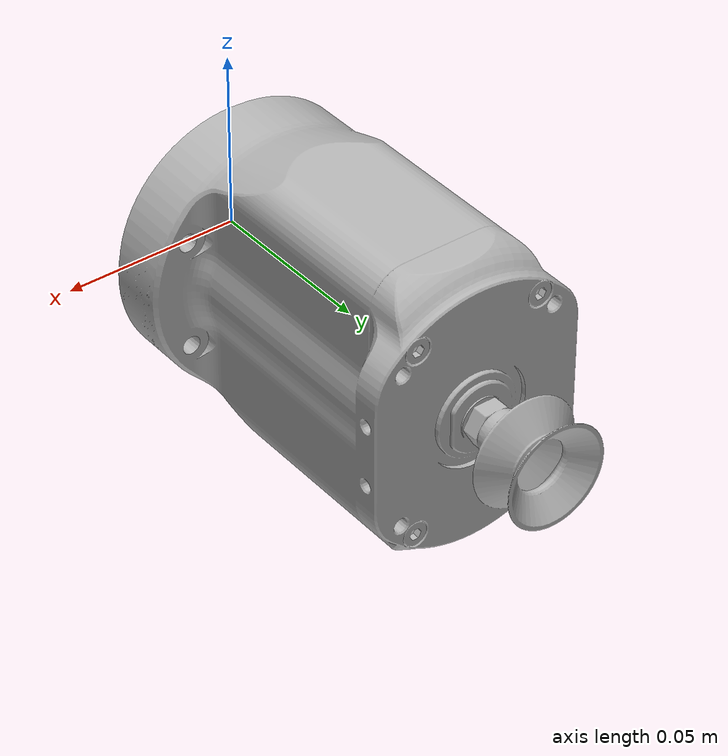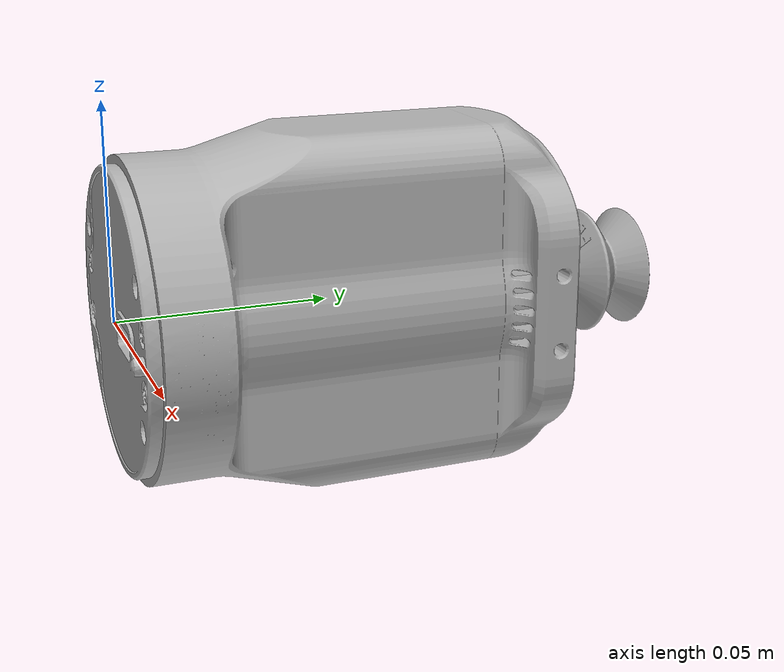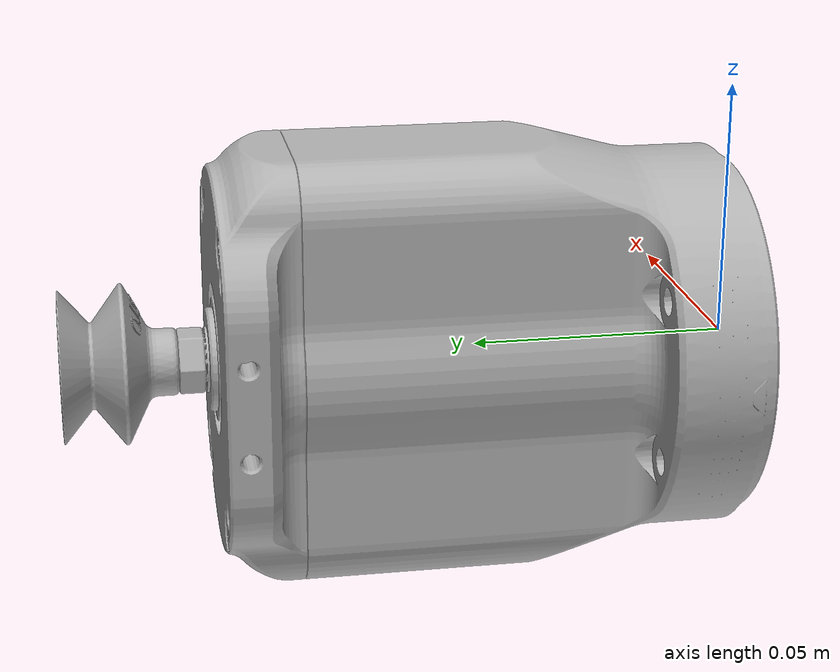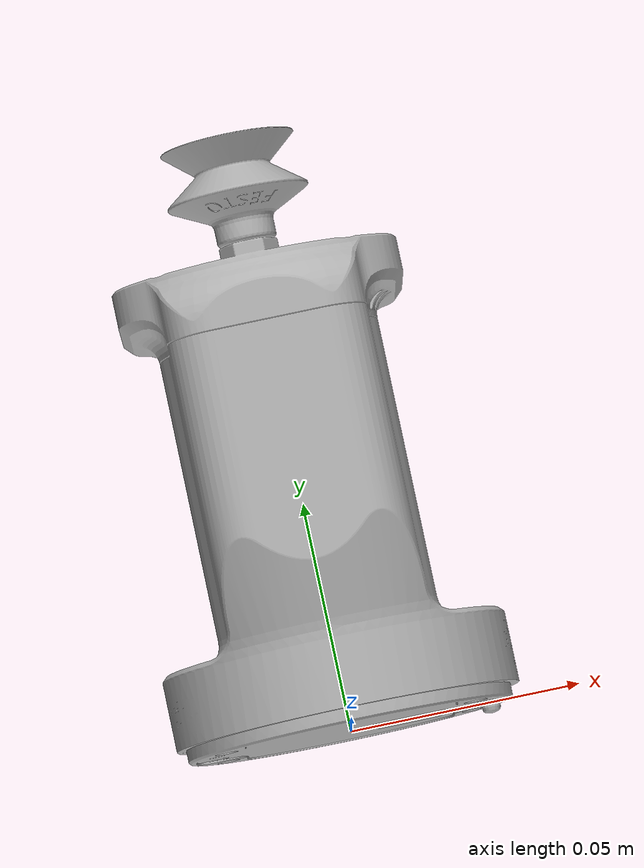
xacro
<?xml version="1.0" ?>
<robot name="epick_v2" xmlns:xacro="http://www.ros.org/wiki/xacro">

<xacro:include filename="$(find epick_v2_description)/urdf/materials.xacro" />
<xacro:include filename="$(find epick_v2_description)/urdf/epick_v2.trans" />
<xacro:include filename="$(find epick_v2_description)/urdf/epick_v2.gazebo" />
<link name="base_link">
  <inertial>
    <origin xyz="-1.2686666502570803e-05 0.0506402827734829 1.333057992524368e-07" rpy="0 0 0"/>
    <mass value="2.9525411794982928"/>
    <inertia ixx="0.004109" iyy="0.002006" izz="0.003325" ixy="2e-06" iyz="-0.0" ixz="-0.0"/>
  </inertial>
  <visual>
    <origin xyz="0 0 0" rpy="0 0 0"/>
    <geometry>
      <mesh filename="file://$(find epick_v2_description)/meshes/base_link.stl" scale="0.001 0.001 0.001"/>
    </geometry>
    <material name="silver"/>
  </visual>
  <collision>
    <origin xyz="0 0 0" rpy="0 0 0"/>
    <geometry>
      <mesh filename="file://$(find epick_v2_description)/meshes/base_link.stl" scale="0.001 0.001 0.001"/>
    </geometry>
  </collision>
</link>

</robot>

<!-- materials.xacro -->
<robot name="epick_v2" xmlns:xacro="http://www.ros.org/wiki/xacro" >

<material name="silver">
  <color rgba="0.700 0.700 0.700 1.000"/>
</material>

</robot>

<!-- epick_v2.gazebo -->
<robot name="epick_v2" xmlns:xacro="http://www.ros.org/wiki/xacro" >

<xacro:property name="body_color" value="Gazebo/Silver" />

<gazebo>
  <plugin name="control" filename="libgazebo_ros_control.so"/>
</gazebo>
<gazebo reference="base_link">
  <material>${body_color}</material>
  <mu1>0.2</mu1>
  <mu2>0.2</mu2>
  <self_collide>true</self_collide>
  <gravity>true</gravity>
</gazebo>

</robot>
